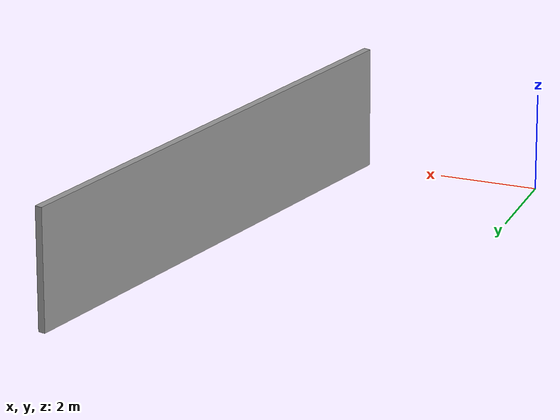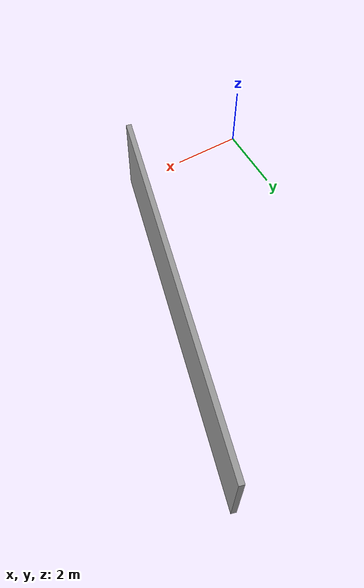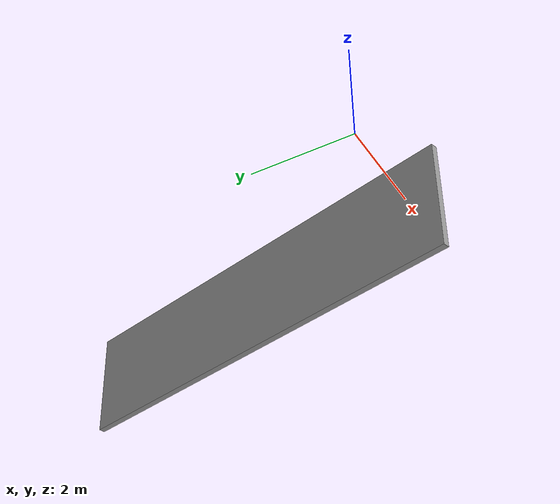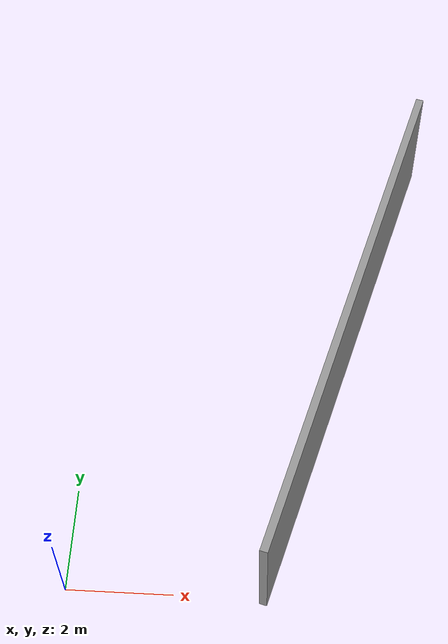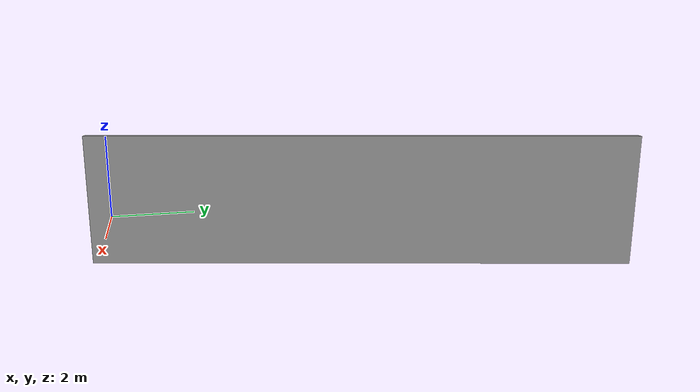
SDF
<?xml version='1.0'?>
<sdf version='1.7'>
  <model name='split_wall'>
    <pose>3.22032 4.97867 0 0 -0 0</pose>
    <link name='Wall_0'>
      <collision name='Wall_0_Collision'>
        <geometry>
          <box>
            <size>10.5 0.15 2.5</size>
          </box>
        </geometry>
        <pose>0 0 1.25 0 -0 0</pose>
      </collision>
      <visual name='Wall_0_Visual'>
        <pose>0 0 1.25 0 -0 0</pose>
        <geometry>
          <box>
            <size>10.5 0.15 2.5</size>
          </box>
        </geometry>
        <material>
          <script>
            <uri>file://media/materials/scripts/gazebo.material</uri>
            <name>Gazebo/Grey</name>
          </script>
          <ambient>1 1 1 1</ambient>
        </material>
        <meta>
          <layer>0</layer>
        </meta>
      </visual>
      <pose>1.78907 -0 0 0 -0 -1.8326</pose>
    </link>
    <static>1</static>
  </model>
</sdf>
